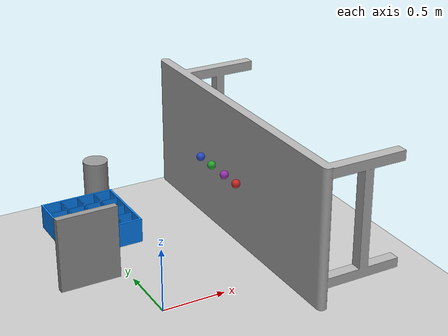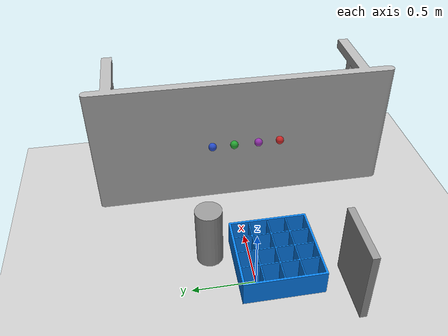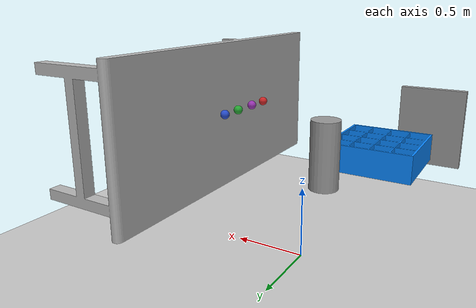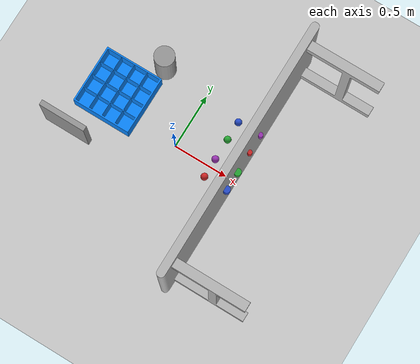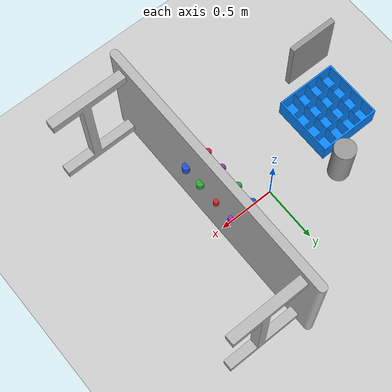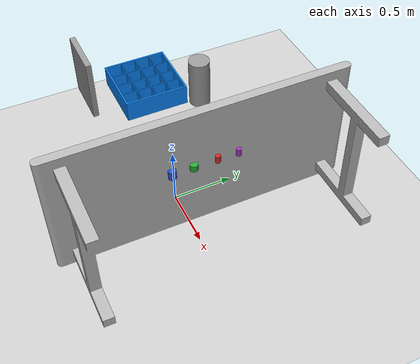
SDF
<sdf version="1.7">
 <world name="default">
  <light name="sun" type="directional">
   <pose>0 0 10 0 -0 0</pose>
   <diffuse>0.8 0.8 0.8 1</diffuse>
   <specular>0.2 0.2 0.2 1</specular>
   <attenuation>
    <range>1000</range>
    <constant>0.9</constant>
    <linear>0.01</linear>
    <quadratic>0.001</quadratic>
   </attenuation>
   <direction>-0.5 0.1 -0.9</direction>
  </light>
  <model name="ground_plane">
   <static>1</static>
   <link name="link">
    <collision name="collision">
     <geometry><plane><normal>0 0 1</normal><size>100 100</size></plane></geometry>
     <surface>
      <contact><collide_bitmask>65535</collide_bitmask></contact>
      <friction><ode><mu>100</mu><mu2>50</mu2></ode></friction>
     </surface>
    </collision>
    <visual name="visual">
     <cast_shadows>0</cast_shadows>
     <geometry><plane><normal>0 0 1</normal><size>100 100</size></plane></geometry>
     <material>
      <script><uri>file://media/materials/scripts/gazebo.material</uri><name>Gazebo/Grey</name></script>
     </material>
    </visual>
   </link>
  </model>
  <gravity>0 0 -9.8</gravity>
  <magnetic_field>6e-06 2.3e-05 -4.2e-05</magnetic_field>
  <atmosphere type="adiabatic"/>
  <physics name="default_physics" default="0" type="ode">
   <max_step_size>0.001</max_step_size>
   <real_time_factor>1</real_time_factor>
   <real_time_update_rate>1000</real_time_update_rate>
  </physics>
  <scene><ambient>0.4 0.4 0.4 1</ambient><background>0.7 0.7 0.7 1</background><shadows>1</shadows></scene>
  <spherical_coordinates>
   <surface_model>EARTH_WGS84</surface_model>
   <latitude_deg>0</latitude_deg>
   <longitude_deg>0</longitude_deg>
   <elevation>0</elevation>
   <heading_deg>0</heading_deg>
  </spherical_coordinates>
  <model name="conveyor">
   <link name="link">
    <inertial>
     <mass>1</mass>
     <inertia><ixx>1</ixx><ixy>0</ixy><ixz>0</ixz><iyy>1</iyy><iyz>0</iyz><izz>1</izz></inertia>
    </inertial>
    <visual name="visual">
     <pose>0 0 0.95 0 -0 0</pose>
     <geometry><mesh><scale>0.45 0.35 0.5</scale><uri>model://conveyor/meshes/conveyor.dae</uri></mesh></geometry>
    </visual>
    <collision name="collision_0">
     <pose>0 0 0.95 0 -0 0</pose>
     <geometry><box><size>2.4 0.8 0.1</size></box></geometry>
     <surface>
      <friction>
       <ode><mu>1</mu><mu2>1</mu2><fdir1>0 0 0</fdir1><slip1>0</slip1><slip2>0</slip2></ode>
       <torsional>
        <coefficient>1</coefficient>
        <patch_radius>0</patch_radius>
        <surface_radius>0</surface_radius>
        <use_patch_radius>1</use_patch_radius>
        <ode><slip>0</slip></ode>
       </torsional>
      </friction>
      <bounce><restitution_coefficient>0</restitution_coefficient><threshold>1e+06</threshold></bounce>
      <contact>
       <collide_without_contact>0</collide_without_contact>
       <collide_without_contact_bitmask>1</collide_without_contact_bitmask>
       <collide_bitmask>1</collide_bitmask>
       <ode>
        <soft_cfm>0</soft_cfm>
        <soft_erp>0.2</soft_erp>
        <kp>1e+13</kp>
        <kd>1</kd>
        <max_vel>0.01</max_vel>
        <min_depth>0</min_depth>
       </ode>
       <bullet>
        <split_impulse>1</split_impulse>
        <split_impulse_penetration_threshold>-0.01</split_impulse_penetration_threshold>
        <soft_cfm>0</soft_cfm>
        <soft_erp>0.2</soft_erp>
        <kp>1e+13</kp>
        <kd>1</kd>
       </bullet>
      </contact>
     </surface>
    </collision>
   </link>
   <static>1</static>
   <pose>0.6 0 0 0 -0 1.57</pose>
  </model>
  <model name="target_4x4">
   <link name="link">
    <inertial>
     <mass>1</mass>
     <inertia><ixx>1</ixx><ixy>0</ixy><ixz>0</ixz><iyy>1</iyy><iyz>0</iyz><izz>1</izz></inertia>
    </inertial>
    <visual name="visual">
     <pose>0 0 0.0075 0 -0 0</pose>
     <geometry>
      <mesh><scale>0.25 0.25 0.25</scale><uri>model://target_4x4/meshes/target_4x4.dae</uri></mesh>
     </geometry>
    </visual>
    <collision name="collision_4">
     <pose>-0.235 0 0 0 -0 0</pose>
     <geometry><box><size>0.015 0.5 0.335</size></box></geometry>
     <surface>
      <friction>
       <ode><mu>1</mu><mu2>1</mu2><fdir1>0 0 0</fdir1><slip1>0</slip1><slip2>0</slip2></ode>
       <torsional>
        <coefficient>1</coefficient>
        <patch_radius>0</patch_radius>
        <surface_radius>0</surface_radius>
        <use_patch_radius>1</use_patch_radius>
        <ode><slip>0</slip></ode>
       </torsional>
      </friction>
      <bounce><restitution_coefficient>0</restitution_coefficient><threshold>1e+06</threshold></bounce>
      <contact>
       <collide_without_contact>0</collide_without_contact>
       <collide_without_contact_bitmask>1</collide_without_contact_bitmask>
       <collide_bitmask>1</collide_bitmask>
       <ode>
        <soft_cfm>0</soft_cfm>
        <soft_erp>0.2</soft_erp>
        <kp>1e+13</kp>
        <kd>1</kd>
        <max_vel>0.01</max_vel>
        <min_depth>0</min_depth>
       </ode>
       <bullet>
        <split_impulse>1</split_impulse>
        <split_impulse_penetration_threshold>-0.01</split_impulse_penetration_threshold>
        <soft_cfm>0</soft_cfm>
        <soft_erp>0.2</soft_erp>
        <kp>1e+13</kp>
        <kd>1</kd>
       </bullet>
      </contact>
     </surface>
    </collision>
    <collision name="collision_5">
     <pose>0.0025 0 0 0 -0 0</pose>
     <geometry><box><size>0.005 0.5 0.325</size></box></geometry>
     <surface>
      <friction>
       <ode><mu>1</mu><mu2>1</mu2><fdir1>0 0 0</fdir1><slip1>0</slip1><slip2>0</slip2></ode>
       <torsional>
        <coefficient>1</coefficient>
        <patch_radius>0</patch_radius>
        <surface_radius>0</surface_radius>
        <use_patch_radius>1</use_patch_radius>
        <ode><slip>0</slip></ode>
       </torsional>
      </friction>
      <bounce><restitution_coefficient>0</restitution_coefficient><threshold>1e+06</threshold></bounce>
      <contact>
       <collide_without_contact>0</collide_without_contact>
       <collide_without_contact_bitmask>1</collide_without_contact_bitmask>
       <collide_bitmask>1</collide_bitmask>
       <ode>
        <soft_cfm>0</soft_cfm>
        <soft_erp>0.2</soft_erp>
        <kp>1e+13</kp>
        <kd>1</kd>
        <max_vel>0.01</max_vel>
        <min_depth>0</min_depth>
       </ode>
       <bullet>
        <split_impulse>1</split_impulse>
        <split_impulse_penetration_threshold>-0.01</split_impulse_penetration_threshold>
        <soft_cfm>0</soft_cfm>
        <soft_erp>0.2</soft_erp>
        <kp>1e+13</kp>
        <kd>1</kd>
       </bullet>
      </contact>
     </surface>
    </collision>
    <collision name="collision_6">
     <pose>0.12 0 0 0 -0 0</pose>
     <geometry><box><size>0.005 0.5 0.325</size></box></geometry>
     <surface>
      <friction>
       <ode><mu>1</mu><mu2>1</mu2><fdir1>0 0 0</fdir1><slip1>0</slip1><slip2>0</slip2></ode>
       <torsional>
        <coefficient>1</coefficient>
        <patch_radius>0</patch_radius>
        <surface_radius>0</surface_radius>
        <use_patch_radius>1</use_patch_radius>
        <ode><slip>0</slip></ode>
       </torsional>
      </friction>
      <bounce><restitution_coefficient>0</restitution_coefficient><threshold>1e+06</threshold></bounce>
      <contact>
       <collide_without_contact>0</collide_without_contact>
       <collide_without_contact_bitmask>1</collide_without_contact_bitmask>
       <collide_bitmask>1</collide_bitmask>
       <ode>
        <soft_cfm>0</soft_cfm>
        <soft_erp>0.2</soft_erp>
        <kp>1e+13</kp>
        <kd>1</kd>
        <max_vel>0.01</max_vel>
        <min_depth>0</min_depth>
       </ode>
       <bullet>
        <split_impulse>1</split_impulse>
        <split_impulse_penetration_threshold>-0.01</split_impulse_penetration_threshold>
        <soft_cfm>0</soft_cfm>
        <soft_erp>0.2</soft_erp>
        <kp>1e+13</kp>
        <kd>1</kd>
       </bullet>
      </contact>
     </surface>
    </collision>
    <collision name="collision_3">
     <pose>0.235 0 0 0 -0 0</pose>
     <geometry><box><size>0.015 0.5 0.335</size></box></geometry>
     <surface>
      <friction>
       <ode><mu>1</mu><mu2>1</mu2><fdir1>0 0 0</fdir1><slip1>0</slip1><slip2>0</slip2></ode>
       <torsional>
        <coefficient>1</coefficient>
        <patch_radius>0</patch_radius>
        <surface_radius>0</surface_radius>
        <use_patch_radius>1</use_patch_radius>
        <ode><slip>0</slip></ode>
       </torsional>
      </friction>
      <bounce><restitution_coefficient>0</restitution_coefficient><threshold>1e+06</threshold></bounce>
      <contact>
       <collide_without_contact>0</collide_without_contact>
       <collide_without_contact_bitmask>1</collide_without_contact_bitmask>
       <collide_bitmask>1</collide_bitmask>
       <ode>
        <soft_cfm>0</soft_cfm>
        <soft_erp>0.2</soft_erp>
        <kp>1e+13</kp>
        <kd>1</kd>
        <max_vel>0.01</max_vel>
        <min_depth>0</min_depth>
       </ode>
       <bullet>
        <split_impulse>1</split_impulse>
        <split_impulse_penetration_threshold>-0.01</split_impulse_penetration_threshold>
        <soft_cfm>0</soft_cfm>
        <soft_erp>0.2</soft_erp>
        <kp>1e+13</kp>
        <kd>1</kd>
       </bullet>
      </contact>
     </surface>
    </collision>
    <collision name="collision_1">
     <pose>0 0.235 0 0 -0 0</pose>
     <geometry><box><size>0.5 0.015 0.335</size></box></geometry>
     <surface>
      <friction>
       <ode><mu>1</mu><mu2>1</mu2><fdir1>0 0 0</fdir1><slip1>0</slip1><slip2>0</slip2></ode>
       <torsional>
        <coefficient>1</coefficient>
        <patch_radius>0</patch_radius>
        <surface_radius>0</surface_radius>
        <use_patch_radius>1</use_patch_radius>
        <ode><slip>0</slip></ode>
       </torsional>
      </friction>
      <bounce><restitution_coefficient>0</restitution_coefficient><threshold>1e+06</threshold></bounce>
      <contact>
       <collide_without_contact>0</collide_without_contact>
       <collide_without_contact_bitmask>1</collide_without_contact_bitmask>
       <collide_bitmask>1</collide_bitmask>
       <ode>
        <soft_cfm>0</soft_cfm>
        <soft_erp>0.2</soft_erp>
        <kp>1e+13</kp>
        <kd>1</kd>
        <max_vel>0.01</max_vel>
        <min_depth>0</min_depth>
       </ode>
       <bullet>
        <split_impulse>1</split_impulse>
        <split_impulse_penetration_threshold>-0.01</split_impulse_penetration_threshold>
        <soft_cfm>0</soft_cfm>
        <soft_erp>0.2</soft_erp>
        <kp>1e+13</kp>
        <kd>1</kd>
       </bullet>
      </contact>
     </surface>
    </collision>
    <collision name="collision_2">
     <pose>0 -0.235 0 0 -0 0</pose>
     <geometry><box><size>0.5 0.015 0.335</size></box></geometry>
     <surface>
      <friction>
       <ode><mu>1</mu><mu2>1</mu2><fdir1>0 0 0</fdir1><slip1>0</slip1><slip2>0</slip2></ode>
       <torsional>
        <coefficient>1</coefficient>
        <patch_radius>0</patch_radius>
        <surface_radius>0</surface_radius>
        <use_patch_radius>1</use_patch_radius>
        <ode><slip>0</slip></ode>
       </torsional>
      </friction>
      <bounce><restitution_coefficient>0</restitution_coefficient><threshold>1e+06</threshold></bounce>
      <contact>
       <collide_without_contact>0</collide_without_contact>
       <collide_without_contact_bitmask>1</collide_without_contact_bitmask>
       <collide_bitmask>1</collide_bitmask>
       <ode>
        <soft_cfm>0</soft_cfm>
        <soft_erp>0.2</soft_erp>
        <kp>1e+13</kp>
        <kd>1</kd>
        <max_vel>0.01</max_vel>
        <min_depth>0</min_depth>
       </ode>
       <bullet>
        <split_impulse>1</split_impulse>
        <split_impulse_penetration_threshold>-0.01</split_impulse_penetration_threshold>
        <soft_cfm>0</soft_cfm>
        <soft_erp>0.2</soft_erp>
        <kp>1e+13</kp>
        <kd>1</kd>
       </bullet>
      </contact>
     </surface>
    </collision>
    <collision name="collision_0">
     <geometry><box><size>0.5 0.5 0.02</size></box></geometry>
     <surface>
      <friction>
       <ode><mu>1</mu><mu2>1</mu2><fdir1>0 0 0</fdir1><slip1>0</slip1><slip2>0</slip2></ode>
       <torsional>
        <coefficient>1</coefficient>
        <patch_radius>0</patch_radius>
        <surface_radius>0</surface_radius>
        <use_patch_radius>1</use_patch_radius>
        <ode><slip>0</slip></ode>
       </torsional>
      </friction>
      <bounce><restitution_coefficient>0</restitution_coefficient><threshold>1e+06</threshold></bounce>
      <contact>
       <collide_without_contact>0</collide_without_contact>
       <collide_without_contact_bitmask>1</collide_without_contact_bitmask>
       <collide_bitmask>1</collide_bitmask>
       <ode>
        <soft_cfm>0</soft_cfm>
        <soft_erp>0.2</soft_erp>
        <kp>1e+13</kp>
        <kd>1</kd>
        <max_vel>0.01</max_vel>
        <min_depth>0</min_depth>
       </ode>
       <bullet>
        <split_impulse>1</split_impulse>
        <split_impulse_penetration_threshold>-0.01</split_impulse_penetration_threshold>
        <soft_cfm>0</soft_cfm>
        <soft_erp>0.2</soft_erp>
        <kp>1e+13</kp>
        <kd>1</kd>
       </bullet>
      </contact>
     </surface>
    </collision>
    <collision name="collision_7">
     <pose>-0.115 0 0 0 -0 0</pose>
     <geometry><box><size>0.015 0.5 0.325</size></box></geometry>
     <surface>
      <friction>
       <ode><mu>1</mu><mu2>1</mu2><fdir1>0 0 0</fdir1><slip1>0</slip1><slip2>0</slip2></ode>
       <torsional>
        <coefficient>1</coefficient>
        <patch_radius>0</patch_radius>
        <surface_radius>0</surface_radius>
        <use_patch_radius>1</use_patch_radius>
        <ode><slip>0</slip></ode>
       </torsional>
      </friction>
      <bounce><restitution_coefficient>0</restitution_coefficient><threshold>1e+06</threshold></bounce>
      <contact>
       <collide_without_contact>0</collide_without_contact>
       <collide_without_contact_bitmask>1</collide_without_contact_bitmask>
       <collide_bitmask>1</collide_bitmask>
       <ode>
        <soft_cfm>0</soft_cfm>
        <soft_erp>0.2</soft_erp>
        <kp>1e+13</kp>
        <kd>1</kd>
        <max_vel>0.01</max_vel>
        <min_depth>0</min_depth>
       </ode>
       <bullet>
        <split_impulse>1</split_impulse>
        <split_impulse_penetration_threshold>-0.01</split_impulse_penetration_threshold>
        <soft_cfm>0</soft_cfm>
        <soft_erp>0.2</soft_erp>
        <kp>1e+13</kp>
        <kd>1</kd>
       </bullet>
      </contact>
     </surface>
    </collision>
    <collision name="collision_8">
     <pose>0 0.0025 0 0 -0 0</pose>
     <geometry><box><size>0.5 0.005 0.325</size></box></geometry>
     <surface>
      <friction>
       <ode><mu>1</mu><mu2>1</mu2><fdir1>0 0 0</fdir1><slip1>0</slip1><slip2>0</slip2></ode>
       <torsional>
        <coefficient>1</coefficient>
        <patch_radius>0</patch_radius>
        <surface_radius>0</surface_radius>
        <use_patch_radius>1</use_patch_radius>
        <ode><slip>0</slip></ode>
       </torsional>
      </friction>
      <bounce><restitution_coefficient>0</restitution_coefficient><threshold>1e+06</threshold></bounce>
      <contact>
       <collide_without_contact>0</collide_without_contact>
       <collide_without_contact_bitmask>1</collide_without_contact_bitmask>
       <collide_bitmask>1</collide_bitmask>
       <ode>
        <soft_cfm>0</soft_cfm>
        <soft_erp>0.2</soft_erp>
        <kp>1e+13</kp>
        <kd>1</kd>
        <max_vel>0.01</max_vel>
        <min_depth>0</min_depth>
       </ode>
       <bullet>
        <split_impulse>1</split_impulse>
        <split_impulse_penetration_threshold>-0.01</split_impulse_penetration_threshold>
        <soft_cfm>0</soft_cfm>
        <soft_erp>0.2</soft_erp>
        <kp>1e+13</kp>
        <kd>1</kd>
       </bullet>
      </contact>
     </surface>
    </collision>
    <collision name="collision_9">
     <pose>0 0.12 0 0 -0 0</pose>
     <geometry><box><size>0.5 0.005 0.325</size></box></geometry>
     <surface>
      <friction>
       <ode><mu>1</mu><mu2>1</mu2><fdir1>0 0 0</fdir1><slip1>0</slip1><slip2>0</slip2></ode>
       <torsional>
        <coefficient>1</coefficient>
        <patch_radius>0</patch_radius>
        <surface_radius>0</surface_radius>
        <use_patch_radius>1</use_patch_radius>
        <ode><slip>0</slip></ode>
       </torsional>
      </friction>
      <bounce><restitution_coefficient>0</restitution_coefficient><threshold>1e+06</threshold></bounce>
      <contact>
       <collide_without_contact>0</collide_without_contact>
       <collide_without_contact_bitmask>1</collide_without_contact_bitmask>
       <collide_bitmask>1</collide_bitmask>
       <ode>
        <soft_cfm>0</soft_cfm>
        <soft_erp>0.2</soft_erp>
        <kp>1e+13</kp>
        <kd>1</kd>
        <max_vel>0.01</max_vel>
        <min_depth>0</min_depth>
       </ode>
       <bullet>
        <split_impulse>1</split_impulse>
        <split_impulse_penetration_threshold>-0.01</split_impulse_penetration_threshold>
        <soft_cfm>0</soft_cfm>
        <soft_erp>0.2</soft_erp>
        <kp>1e+13</kp>
        <kd>1</kd>
       </bullet>
      </contact>
     </surface>
    </collision>
    <collision name="collision_10">
     <pose>0 -0.115 0 0 -0 0</pose>
     <geometry><box><size>0.5 0.005 0.325</size></box></geometry>
     <surface>
      <friction>
       <ode><mu>1</mu><mu2>1</mu2><fdir1>0 0 0</fdir1><slip1>0</slip1><slip2>0</slip2></ode>
       <torsional>
        <coefficient>1</coefficient>
        <patch_radius>0</patch_radius>
        <surface_radius>0</surface_radius>
        <use_patch_radius>1</use_patch_radius>
        <ode><slip>0</slip></ode>
       </torsional>
      </friction>
      <bounce><restitution_coefficient>0</restitution_coefficient><threshold>1e+06</threshold></bounce>
      <contact>
       <collide_without_contact>0</collide_without_contact>
       <collide_without_contact_bitmask>1</collide_without_contact_bitmask>
       <collide_bitmask>1</collide_bitmask>
       <ode>
        <soft_cfm>0</soft_cfm>
        <soft_erp>0.2</soft_erp>
        <kp>1e+13</kp>
        <kd>1</kd>
        <max_vel>0.01</max_vel>
        <min_depth>0</min_depth>
       </ode>
       <bullet>
        <split_impulse>1</split_impulse>
        <split_impulse_penetration_threshold>-0.01</split_impulse_penetration_threshold>
        <soft_cfm>0</soft_cfm>
        <soft_erp>0.2</soft_erp>
        <kp>1e+13</kp>
        <kd>1</kd>
       </bullet>
      </contact>
     </surface>
    </collision>
   </link>
   <static>1</static>
   <pose>-0.5 0 0.76 0 -0 0</pose>
  </model>
  <model name="unit_box">
   <pose>-0.7 -0.435456 0.927284 0 -2e-06 -0.000979</pose>
   <link name="link">
    <inertial>
     <mass>1</mass>
     <inertia>
      <ixx>0.166667</ixx>
      <ixy>0</ixy>
      <ixz>0</ixz>
      <iyy>0.166667</iyy>
      <iyz>0</iyz>
      <izz>0.166667</izz>
     </inertia>
    </inertial>
    <collision name="collision"><geometry><box><size>0.4 0.04449 0.499999</size></box></geometry></collision>
    <visual name="visual">
     <geometry><box><size>0.4 0.04449 0.499999</size></box></geometry>
     <material>
      <script><name>Gazebo/Grey</name><uri>file://media/materials/scripts/gazebo.material</uri></script>
     </material>
    </visual>
   </link>
   <static>1</static>
  </model>
  <model name="unit_cylinder">
   <pose>-0.3 0.38 0.897305 -1.3e-05 -8.1e-05 2.9e-05</pose>
   <link name="link">
    <inertial>
     <mass>1</mass>
     <inertia><ixx>0.145833</ixx><ixy>0</ixy><ixz>0</ixz><iyy>0.145833</iyy><iyz>0</iyz><izz>0.125</izz></inertia>
    </inertial>
    <collision name="collision">
     <geometry><cylinder><radius>0.0850703</radius><length>0.4</length></cylinder></geometry>
    </collision>
    <visual name="visual">
     <geometry><cylinder><radius>0.0850703</radius><length>0.4</length></cylinder></geometry>
     <material>
      <script><name>Gazebo/Grey</name><uri>file://media/materials/scripts/gazebo.material</uri></script>
     </material>
    </visual>
   </link>
   <static>1</static>
  </model>
  <model name="blue_sphere">
   <link name="blue_sphere">
    <inertial>
     <mass>0.01</mass>
     <inertia><ixx>0</ixx><ixy>0</ixy><ixz>0</ixz><iyy>0</iyy><iyz>0</iyz><izz>0</izz></inertia>
    </inertial>
    <collision name="blue_sphere_collision">
     <geometry><sphere><radius>0.03</radius></sphere></geometry>
    </collision>
    <visual name="blue_sphere_visual">
     <geometry><sphere><radius>0.03</radius></sphere></geometry>
     <material>
      <script><name>Gazebo/Blue</name><uri>file://media/materials/scripts/gazebo.material</uri></script>
     </material>
    </visual>
   </link>
   <pose>0.45 0.25 1.01 0 -0 0</pose>
  </model>
  <model name="red_sphere">
   <link name="red_sphere">
    <inertial>
     <mass>0.01</mass>
     <inertia><ixx>0</ixx><ixy>0</ixy><ixz>0</ixz><iyy>0</iyy><iyz>0</iyz><izz>0</izz></inertia>
    </inertial>
    <collision name="red_sphere_collision"><geometry><sphere><radius>0.03</radius></sphere></geometry></collision>
    <visual name="red_sphere_visual">
     <geometry><sphere><radius>0.03</radius></sphere></geometry>
     <material>
      <script><name>Gazebo/Red</name><uri>file://media/materials/scripts/gazebo.material</uri></script>
     </material>
    </visual>
   </link>
   <pose>0.45 -0.25 1.01 0 -0 0</pose>
  </model>
  <model name="green_sphere">
   <link name="green_sphere">
    <inertial>
     <mass>0.01</mass>
     <inertia><ixx>0</ixx><ixy>0</ixy><ixz>0</ixz><iyy>0</iyy><iyz>0</iyz><izz>0</izz></inertia>
    </inertial>
    <collision name="green_sphere_collision">
     <geometry><sphere><radius>0.03</radius></sphere></geometry>
    </collision>
    <visual name="green_sphere_visual">
     <geometry><sphere><radius>0.03</radius></sphere></geometry>
     <material>
      <script><name>Gazebo/Green</name><uri>file://media/materials/scripts/gazebo.material</uri></script>
     </material>
    </visual>
   </link>
   <pose>0.45 0.09 1.01 0 -0 0</pose>
  </model>
  <model name="purple_sphere">
   <link name="purple_sphere">
    <inertial>
     <mass>0.01</mass>
     <inertia><ixx>0</ixx><ixy>0</ixy><ixz>0</ixz><iyy>0</iyy><iyz>0</iyz><izz>0</izz></inertia>
    </inertial>
    <collision name="purple_sphere_collision">
     <geometry><sphere><radius>0.03</radius></sphere></geometry>
    </collision>
    <visual name="purple_sphere_visual">
     <geometry><sphere><radius>0.03</radius></sphere></geometry>
     <material>
      <script><name>Gazebo/Purple</name><uri>file://media/materials/scripts/gazebo.material</uri></script>
     </material>
    </visual>
   </link>
   <pose>0.45 -0.09 1.01 0 -0 0</pose>
  </model>
  <model name="green_cylinder">
   <link name="green_cylinder">
    <inertial>
     <mass>0.01</mass>
     <inertia><ixx>0</ixx><ixy>0</ixy><ixz>0</ixz><iyy>0</iyy><iyz>0</iyz><izz>0</izz></inertia>
    </inertial>
    <collision name="green_cylinder_collision">
     <geometry><cylinder><radius>0.03</radius><length>0.05</length></cylinder></geometry>
    </collision>
    <visual name="green_cylinder_visual">
     <geometry><cylinder><radius>0.03</radius><length>0.05</length></cylinder></geometry>
     <material>
      <script><name>Gazebo/Green</name><uri>file://media/materials/scripts/gazebo.material</uri></script>
     </material>
    </visual>
   </link>
   <pose>0.65 -0.09 1.01 0 -0 0</pose>
  </model>
  <model name="purple_cylinder">
   <link name="purple_cylinder">
    <inertial>
     <mass>0.01</mass>
     <inertia><ixx>0</ixx><ixy>0</ixy><ixz>0</ixz><iyy>0</iyy><iyz>0</iyz><izz>0</izz></inertia>
    </inertial>
    <collision name="purple_cylinder_collision">
     <geometry><cylinder><radius>0.02</radius><length>0.06</length></cylinder></geometry>
    </collision>
    <visual name="purple_cylinder_visual">
     <geometry><cylinder><radius>0.02</radius><length>0.06</length></cylinder></geometry>
     <material>
      <script><name>Gazebo/Purple</name><uri>file://media/materials/scripts/gazebo.material</uri></script>
     </material>
    </visual>
   </link>
   <pose>0.65 0.25 1.01 0 -0 0</pose>
  </model>
  <model name="red_cylinder">
   <link name="red_cylinder">
    <inertial>
     <mass>0.01</mass>
     <inertia><ixx>0</ixx><ixy>0</ixy><ixz>0</ixz><iyy>0</iyy><iyz>0</iyz><izz>0</izz></inertia>
    </inertial>
    <collision name="red_cylinder_collision">
     <geometry><cylinder><radius>0.02</radius><length>0.06</length></cylinder></geometry>
    </collision>
    <visual name="red_cylinder_visual">
     <geometry><cylinder><radius>0.02</radius><length>0.06</length></cylinder></geometry>
     <material>
      <script><name>Gazebo/Red</name><uri>file://media/materials/scripts/gazebo.material</uri></script>
     </material>
    </visual>
   </link>
   <pose>0.65 0.09 1.01 0 -0 0</pose>
  </model>
  <model name="blue_cylinder">
   <link name="blue_cylinder">
    <inertial>
     <mass>0.01</mass>
     <inertia><ixx>0</ixx><ixy>0</ixy><ixz>0</ixz><iyy>0</iyy><iyz>0</iyz><izz>0</izz></inertia>
    </inertial>
    <collision name="blue_cylinder_collision">
     <geometry><cylinder><radius>0.03</radius><length>0.07</length></cylinder></geometry>
    </collision>
    <visual name="blue_cylinder_visual">
     <geometry><cylinder><radius>0.03</radius><length>0.07</length></cylinder></geometry>
     <material>
      <script><name>Gazebo/Blue</name><uri>file://media/materials/scripts/gazebo.material</uri></script>
     </material>
    </visual>
   </link>
   <pose>0.65 -0.25 1.01 0 -0 0</pose>
  </model>
  <plugin name="gazebo_link_attacher" filename="libgazebo_link_attacher.so"/>
 </world>
</sdf>
